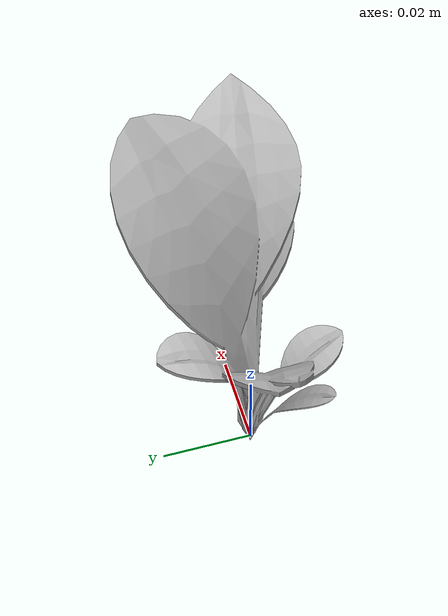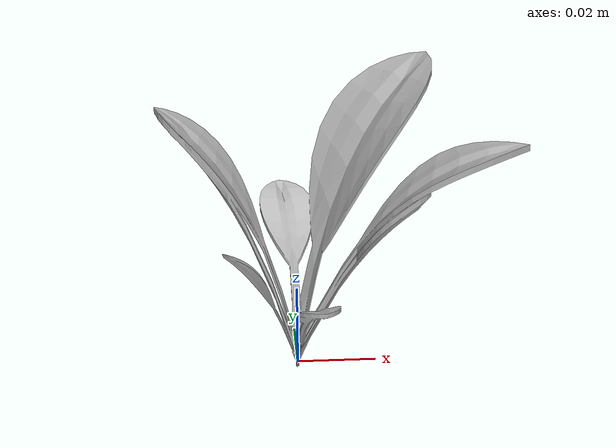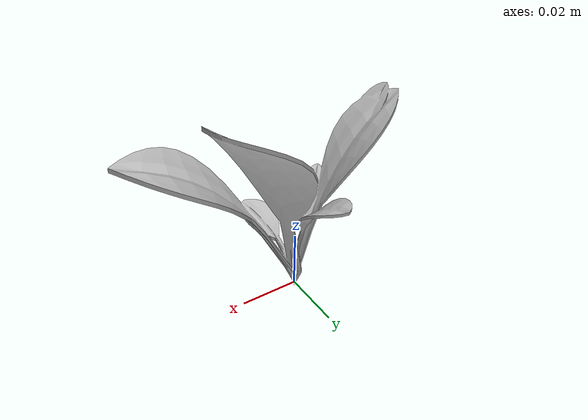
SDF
<sdf version="1.6">
  <model name="sugar_beet_37">
    <static>true</static>
    <link name="body">
      <visual name="visual">
        <geometry>
          <mesh>
            <uri>file:///sugar_beet_37/media/sugar_beet.dae</uri>
          </mesh>
        </geometry>
      </visual>
    </link>
  </model>
</sdf>
